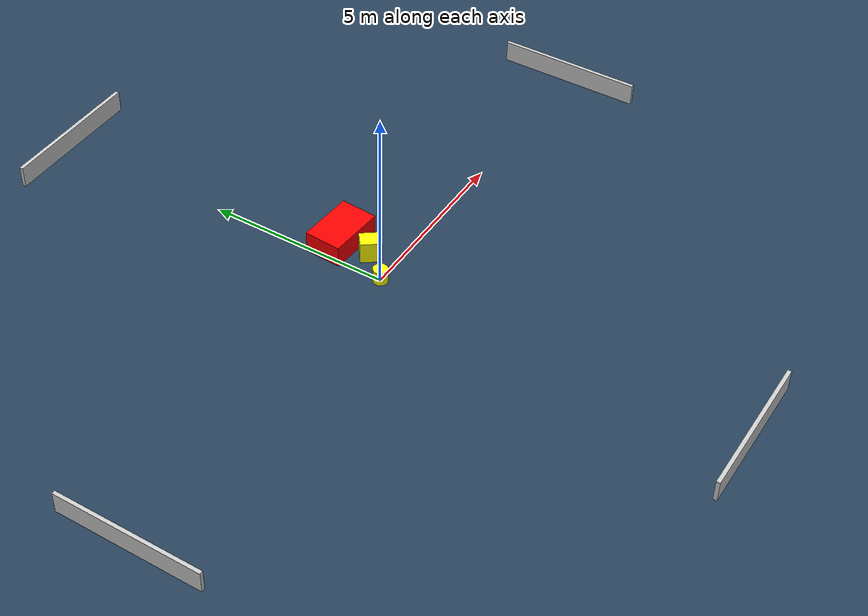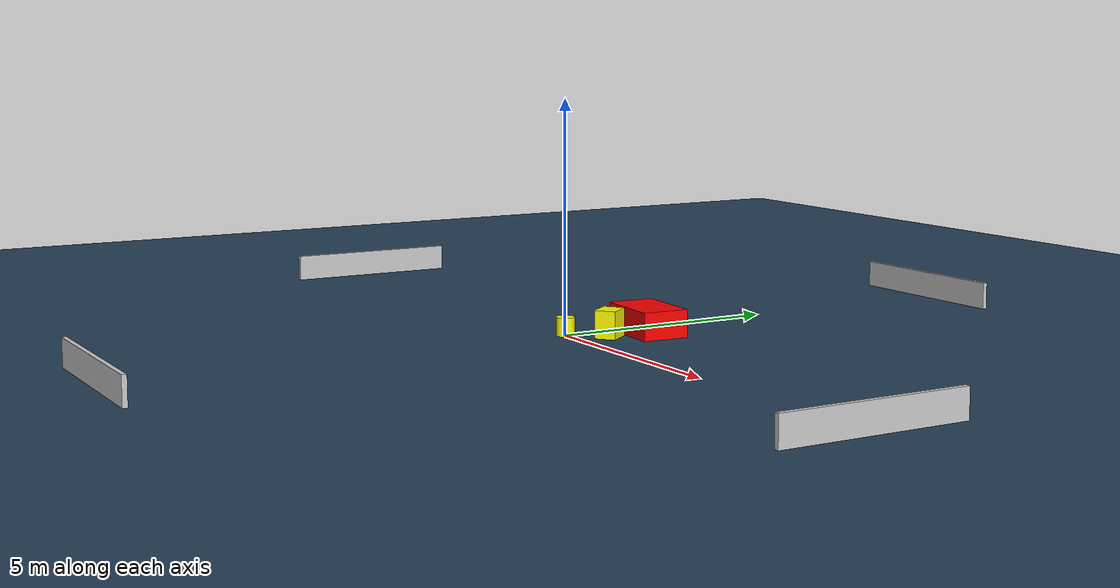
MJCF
<?xml version="1.0" ?>
<mujoco model="generated_environment">
  <option timestep="0.01" integrator="RK4" cone="elliptic"/>
  <default>
    <geom density="1"/>
  </default>
  <asset>
    <texture builtin="gradient" height="3072" name="skybox" rgb1="0.3 0.5 0.7" rgb2="0 0 0" type="skybox" width="512"/>
    <texture builtin="checker" height="300" name="groundplane" rgb1="0.2 0.3 0.4" rgb2="0.1 0.2 0.3" type="2d" width="300"/>
    <material name="groundplane" reflectance="0.2" texrepeat="5 5" texture="groundplane"/>
  </asset>
  <worldbody>
    <light dir="0 0 -1" directional="true" pos="0 0 1.5"/>
    <geom condim="3" friction="0.5 0.005 0.001" material="groundplane" name="floor" pos="0 0 0" size="0 0 0.05" type="plane"/>
    <body name="walls">
      <geom name="wall_1" condim="4" pos="-10.0 0.0 0.3" rgba="0.800000011920929 0.800000011920929 0.800000011920929 1.0" size="0.05 2.0 0.3" type="box"/>
      <geom name="wall_2" condim="4" pos="10.0 0.0 0.3" rgba="0.800000011920929 0.800000011920929 0.800000011920929 1.0" size="0.05 2.0 0.3" type="box"/>
      <geom name="wall_3" condim="4" pos="0.0 -10.0 0.3" rgba="0.800000011920929 0.800000011920929 0.800000011920929 1.0" size="2.0 0.05 0.3" type="box"/>
      <geom name="wall_4" condim="4" pos="0.0 10.0 0.3" rgba="0.800000011920929 0.800000011920929 0.800000011920929 1.0" size="2.0 0.05 0.3" type="box"/>
    </body>
    <body name="robot">
      <joint name="joint_x" type="slide" pos="0 0 0" axis="1 0 0"/>
      <joint name="joint_y" type="slide" pos="0 0 0" axis="0 1 0"/>
      <geom name="robot" type="cylinder" pos="0.0 0.0 0.2" size="0.2 0.2 0.0" mass="5.0" friction="1.0 0.005 0.0001" condim="4" rgba="1.0 1.0 0.0 1.0"/>
    </body>
    <body name="obstacle_1_movable">
      <geom name="obstacle_1_movable" condim="4" pos="0.6268184027458471 0.7057509231284212 0.3" euler="0 0 37.195748750368494" friction="0.0 0.005 0.001" rgba="1.0 1.0 0.0 1.0" size="0.2278522859105544 0.2806151676050533 0.3" type="box" mass="0.1"/>
      <joint type="free"/>
    </body>
    <body name="obstacle_2_static">
      <geom name="obstacle_2_static" condim="4" pos="0.6778391684624053 1.6310234358108484 0.3" euler="0 0 86.12737390586372" friction="0.0 0.005 0.001" rgba="1.0 0.0 0.0 1.0" size="0.5113455267160303 0.7803308918069956 0.3" type="box"/>
    </body>
  </worldbody>
  <actuator>
    <motor name="actuator_x" joint="joint_x" gear="1" ctrlrange="-1 1"/>
    <motor name="actuator_y" joint="joint_y" gear="1" ctrlrange="-1 1"/>
  </actuator>
</mujoco>
